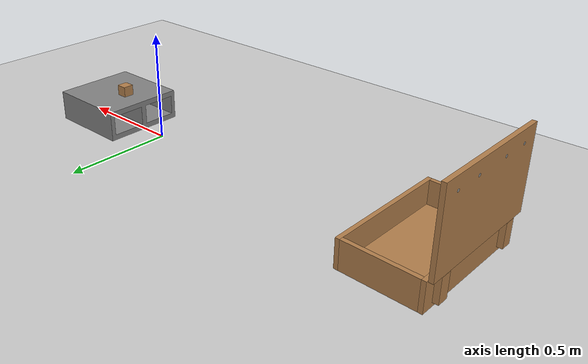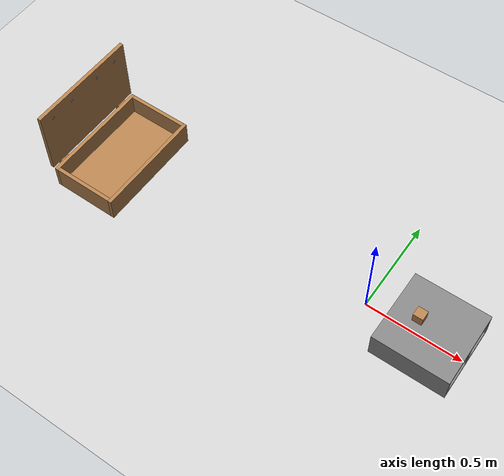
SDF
<sdf version="1.6">
 <world name="default">
  <light name="sun" type="directional">
   <pose>0 0 10 0 -0 0</pose>
   <diffuse>0.8 0.8 0.8 1</diffuse>
   <specular>0.2 0.2 0.2 1</specular>
   <attenuation>
    <range>1000</range>
    <constant>0.9</constant>
    <linear>0.01</linear>
    <quadratic>0.001</quadratic>
   </attenuation>
   <direction>-0.5 0.1 -0.9</direction>
  </light>
  <model name="ground_plane">
   <static>1</static>
   <link name="link">
    <collision name="collision">
     <geometry><plane><normal>0 0 1</normal><size>100 100</size></plane></geometry>
     <surface>
      <contact><collide_bitmask>65535</collide_bitmask></contact>
      <friction><ode><mu>100</mu><mu2>50</mu2></ode></friction>
     </surface>
    </collision>
    <visual name="visual">
     <cast_shadows>0</cast_shadows>
     <geometry><plane><normal>0 0 1</normal><size>100 100</size></plane></geometry>
     <material>
      <script><uri>file://media/materials/scripts/gazebo.material</uri><name>Gazebo/Grey</name></script>
     </material>
    </visual>
   </link>
  </model>
  <gravity>0 0 -9.8</gravity>
  <magnetic_field>6e-06 2.3e-05 -4.2e-05</magnetic_field>
  <atmosphere type="adiabatic"/>
  <physics name="default_physics" default="0" type="ode">
   <max_step_size>0.001</max_step_size>
   <real_time_factor>1</real_time_factor>
   <real_time_update_rate>1000</real_time_update_rate>
  </physics>
  <scene><ambient>0.4 0.4 0.4 1</ambient><background>0.7 0.7 0.7 1</background><shadows>1</shadows></scene>
  <audio><device>default</device></audio>
  <spherical_coordinates>
   <surface_model>EARTH_WGS84</surface_model>
   <latitude_deg>0</latitude_deg>
   <longitude_deg>0</longitude_deg>
   <elevation>0</elevation>
   <heading_deg>0</heading_deg>
  </spherical_coordinates>
  <model name="test_ground_6">
   <link name="link">
    <pose>-0.358127 -0.06074 0.168245 0 -0 0</pose>
    <inertial>
     <mass>0.000565</mass>
     <inertia><ixx>2.4e-07</ixx><ixy>0</ixy><ixz>0</ixz><iyy>2.4e-07</iyy><iyz>0</iyz><izz>2.4e-07</izz></inertia>
    </inertial>
    <visual name="visual">
     <geometry><box><size>0.05 0.05 0.05</size></box></geometry>
     <material>
      <script><uri>file://media/materials/scripts/gazebo.material</uri><name>Gazebo/Wood</name></script>
      <shader type="vertex"><normal_map>__default__</normal_map></shader>
      <ambient>1 1 1 1</ambient>
      <diffuse>1 1 1 1</diffuse>
      <specular>0.2 0.2 0.2 1</specular>
      <emissive>0 0 0 1</emissive>
     </material>
    </visual>
    <collision name="collision">
     <geometry><box><size>0.05 0.05 0.05</size></box></geometry>
     <surface>
      <friction>
       <ode><mu>1</mu><mu2>1</mu2><fdir1>0 0 0</fdir1><slip1>0</slip1><slip2>0</slip2></ode>
       <torsional>
        <coefficient>1</coefficient>
        <patch_radius>0</patch_radius>
        <surface_radius>0.05</surface_radius>
        <use_patch_radius>0</use_patch_radius>
        <ode><slip>0</slip></ode>
       </torsional>
      </friction>
      <bounce><restitution_coefficient>0</restitution_coefficient><threshold>1e+06</threshold></bounce>
      <contact>
       <collide_without_contact>0</collide_without_contact>
       <collide_without_contact_bitmask>1</collide_without_contact_bitmask>
       <collide_bitmask>1</collide_bitmask>
       <ode>
        <soft_cfm>0</soft_cfm>
        <soft_erp>0.2</soft_erp>
        <kp>100000</kp>
        <kd>1</kd>
        <max_vel>1</max_vel>
        <min_depth>0.001</min_depth>
       </ode>
       <bullet>
        <split_impulse>1</split_impulse>
        <split_impulse_penetration_threshold>-0.01</split_impulse_penetration_threshold>
        <soft_cfm>0</soft_cfm>
        <soft_erp>0.2</soft_erp>
        <kp>100000</kp>
        <kd>1</kd>
       </bullet>
      </contact>
     </surface>
    </collision>
   </link>
   <model name="cinder_block_wide">
    <link name="link">
     <inertial>
      <pose>0 0 0.071438 0 -0 0</pose>
      <mass>5</mass>
      <inertia>
       <ixx>0.0681466</ixx>
       <ixy>0</ixy>
       <iyy>0.0681466</iyy>
       <ixz>0</ixz>
       <iyz>0</iyz>
       <izz>0.124808</izz>
      </inertia>
     </inertial>
     <visual name="visual">
      <geometry><mesh><uri>model://cinder_block_wide/meshes/cinder_block_wide.dae</uri></mesh></geometry>
     </visual>
     <collision name="top">
      <pose>0 0 0.130175 0 -0 0</pose>
      <geometry><box><size>0.387354 0.387354 0.0254</size></box></geometry>
      <surface>
       <contact><ode><max_vel>0.1</max_vel><min_depth>0.001</min_depth></ode></contact>
       <friction><ode><mu>1</mu><mu2>1</mu2></ode></friction>
      </surface>
     </collision>
     <collision name="bottom">
      <pose>0 0 0.0127 0 -0 0</pose>
      <geometry><box><size>0.387354 0.387354 0.0254</size></box></geometry>
      <surface>
       <contact><ode><max_vel>0.1</max_vel><min_depth>0.001</min_depth></ode></contact>
       <friction><ode><mu>1</mu><mu2>1</mu2></ode></friction>
      </surface>
     </collision>
     <collision name="left">
      <pose>0 -0.183355 0.071438 0 -0 0</pose>
      <geometry><box><size>0.387354 0.020643 0.092075</size></box></geometry>
      <surface>
       <contact><ode><max_vel>0.1</max_vel><min_depth>0.001</min_depth></ode></contact>
       <friction><ode><mu>1</mu><mu2>1</mu2></ode></friction>
      </surface>
     </collision>
     <collision name="right">
      <pose>0 0.183355 0.071438 0 -0 0</pose>
      <geometry><box><size>0.387354 0.020643 0.092075</size></box></geometry>
      <surface>
       <contact><ode><max_vel>0.1</max_vel><min_depth>0.001</min_depth></ode></contact>
       <friction><ode><mu>1</mu><mu2>1</mu2></ode></friction>
      </surface>
     </collision>
     <collision name="middle">
      <pose>0 0 0.071438 0 -0 0</pose>
      <geometry><box><size>0.387354 0.0254 0.092075</size></box></geometry>
      <surface>
       <contact><ode><max_vel>0.1</max_vel><min_depth>0.001</min_depth></ode></contact>
       <friction><ode><mu>1</mu><mu2>1</mu2></ode></friction>
      </surface>
     </collision>
    </link>
    <pose>-0.292641 -0.063857 0 0 -0 0</pose>
   </model>
   <model name="wooden_case">
    <link name="base">
     <pose>0 0 0.024 0 -0 0</pose>
     <inertial>
      <pose>-0.022184 0 0.171592 0 -0 0</pose>
      <mass>3.96264</mass>
      <inertia>
       <ixx>0.213536</ixx>
       <ixy>0</ixy>
       <ixz>0.000779377</ixz>
       <iyy>0.0708943</iyy>
       <iyz>0</iyz>
       <izz>0.154604</izz>
      </inertia>
     </inertial>
     <collision name="collision_back">
      <pose>-0.053975 0 0.1778 0 -0 0</pose>
      <geometry><box><size>0.01905 0.5461 0.3175</size></box></geometry>
      <surface>
       <contact>
        <poissons_ratio>0.347</poissons_ratio>
        <elastic_modulus>8.8e+09</elastic_modulus>
        <ode><kp>100000</kp><kd>100</kd><max_vel>100</max_vel><min_depth>0.001</min_depth></ode>
       </contact>
       <friction>
        <torsional>
         <coefficient>1</coefficient>
         <use_patch_radius>0</use_patch_radius>
         <surface_radius>0.01</surface_radius>
        </torsional>
       </friction>
      </surface>
     </collision>
     <visual name="visual_back">
      <pose>-0.053975 0 0.1778 0 -0 0</pose>
      <geometry><box><size>0.01905 0.5461 0.3175</size></box></geometry>
      <material>
       <script><uri>file://media/materials/scripts/gazebo.material</uri><name>Gazebo/Wood</name></script>
      </material>
     </visual>
     <collision name="collision_bottom">
      <pose>0 0 0.009525 0 -0 0</pose>
      <geometry><box><size>0.127 0.5842 0.01905</size></box></geometry>
      <surface>
       <contact>
        <poissons_ratio>0.347</poissons_ratio>
        <elastic_modulus>8.8e+09</elastic_modulus>
        <ode><kp>100000</kp><kd>100</kd><max_vel>100</max_vel><min_depth>0.001</min_depth></ode>
       </contact>
       <friction>
        <torsional>
         <coefficient>1</coefficient>
         <use_patch_radius>0</use_patch_radius>
         <surface_radius>0.01</surface_radius>
        </torsional>
       </friction>
      </surface>
     </collision>
     <visual name="visual_bottom">
      <pose>0 0 0.009525 0 -0 0</pose>
      <geometry><box><size>0.127 0.5842 0.01905</size></box></geometry>
      <material>
       <script><uri>file://media/materials/scripts/gazebo.material</uri><name>Gazebo/Wood</name></script>
      </material>
     </visual>
     <collision name="collision_top">
      <pose>0 0 0.346075 0 -0 0</pose>
      <geometry><box><size>0.127 0.5842 0.01905</size></box></geometry>
      <surface>
       <contact>
        <poissons_ratio>0.347</poissons_ratio>
        <elastic_modulus>8.8e+09</elastic_modulus>
        <ode><kp>100000</kp><kd>100</kd><max_vel>100</max_vel><min_depth>0.001</min_depth></ode>
       </contact>
       <friction>
        <torsional>
         <coefficient>1</coefficient>
         <use_patch_radius>0</use_patch_radius>
         <surface_radius>0.01</surface_radius>
        </torsional>
       </friction>
      </surface>
     </collision>
     <visual name="visual_top">
      <pose>0 0 0.346075 0 -0 0</pose>
      <geometry><box><size>0.127 0.5842 0.01905</size></box></geometry>
      <material>
       <script><uri>file://media/materials/scripts/gazebo.material</uri><name>Gazebo/Wood</name></script>
      </material>
     </visual>
     <collision name="collision_left">
      <pose>0 -0.282575 0.1778 0 -0 0</pose>
      <geometry><box><size>0.127 0.01905 0.3175</size></box></geometry>
      <surface>
       <contact>
        <poissons_ratio>0.347</poissons_ratio>
        <elastic_modulus>8.8e+09</elastic_modulus>
        <ode><kp>100000</kp><kd>100</kd><max_vel>100</max_vel><min_depth>0.001</min_depth></ode>
       </contact>
       <friction>
        <torsional>
         <coefficient>1</coefficient>
         <use_patch_radius>0</use_patch_radius>
         <surface_radius>0.01</surface_radius>
        </torsional>
       </friction>
      </surface>
     </collision>
     <visual name="visual_left">
      <pose>0 -0.282575 0.1778 0 -0 0</pose>
      <geometry><box><size>0.127 0.01905 0.3175</size></box></geometry>
      <material>
       <script><uri>file://media/materials/scripts/gazebo.material</uri><name>Gazebo/Wood</name></script>
      </material>
     </visual>
     <collision name="collision_right">
      <pose>0 0.282575 0.1778 0 -0 0</pose>
      <geometry><box><size>0.127 0.01905 0.3175</size></box></geometry>
      <surface>
       <contact>
        <poissons_ratio>0.347</poissons_ratio>
        <elastic_modulus>8.8e+09</elastic_modulus>
        <ode><kp>100000</kp><kd>100</kd><max_vel>100</max_vel><min_depth>0.001</min_depth></ode>
       </contact>
       <friction>
        <torsional>
         <coefficient>1</coefficient>
         <use_patch_radius>0</use_patch_radius>
         <surface_radius>0.01</surface_radius>
        </torsional>
       </friction>
      </surface>
     </collision>
     <visual name="visual_right">
      <pose>0 0.282575 0.1778 0 -0 0</pose>
      <geometry><box><size>0.127 0.01905 0.3175</size></box></geometry>
      <material>
       <script><uri>file://media/materials/scripts/gazebo.material</uri><name>Gazebo/Wood</name></script>
      </material>
     </visual>
     <collision name="collision_block_left">
      <pose>0.0095 -0.2151 -0.012 0 -0 0</pose>
      <geometry><box><size>0.108 0.05 0.024</size></box></geometry>
      <surface>
       <contact>
        <poissons_ratio>0.347</poissons_ratio>
        <elastic_modulus>8.8e+09</elastic_modulus>
        <ode><kp>100000</kp><kd>100</kd><max_vel>100</max_vel><min_depth>0.001</min_depth></ode>
       </contact>
       <friction>
        <torsional>
         <coefficient>1</coefficient>
         <use_patch_radius>0</use_patch_radius>
         <surface_radius>0.01</surface_radius>
        </torsional>
       </friction>
      </surface>
     </collision>
     <visual name="visual_block_left">
      <pose>0.0095 -0.2151 -0.012 0 -0 0</pose>
      <geometry><box><size>0.108 0.05 0.024</size></box></geometry>
      <material>
       <script><uri>file://media/materials/scripts/gazebo.material</uri><name>Gazebo/Wood</name></script>
      </material>
     </visual>
     <collision name="collision_block_right">
      <pose>0.0095 0.2151 -0.012 0 -0 0</pose>
      <geometry><box><size>0.108 0.05 0.024</size></box></geometry>
      <surface>
       <contact>
        <poissons_ratio>0.347</poissons_ratio>
        <elastic_modulus>8.8e+09</elastic_modulus>
        <ode><kp>100000</kp><kd>100</kd><max_vel>100</max_vel><min_depth>0.001</min_depth></ode>
       </contact>
       <friction>
        <torsional>
         <coefficient>1</coefficient>
         <use_patch_radius>0</use_patch_radius>
         <surface_radius>0.01</surface_radius>
        </torsional>
       </friction>
      </surface>
     </collision>
     <visual name="visual_block_right">
      <pose>0.0095 0.2151 -0.012 0 -0 0</pose>
      <geometry><box><size>0.108 0.05 0.024</size></box></geometry>
      <material>
       <script><uri>file://media/materials/scripts/gazebo.material</uri><name>Gazebo/Wood</name></script>
      </material>
     </visual>
    </link>
    <link name="lid">
     <pose>0.243775 0 0.009525 0 -0 0</pose>
     <inertial>
      <mass>1.97874</mass>
      <inertia>
       <ixx>0.0563367</ixx>
       <ixy>0</ixy>
       <ixz>0</ixz>
       <iyy>0.020911</iyy>
       <iyz>0</iyz>
       <izz>0.0771281</izz>
      </inertia>
     </inertial>
     <collision name="collision">
      <geometry><box><size>0.3556 0.5842 0.01905</size></box></geometry>
      <surface>
       <contact>
        <poissons_ratio>0.347</poissons_ratio>
        <elastic_modulus>8.8e+09</elastic_modulus>
        <ode><kp>100000</kp><kd>100</kd><max_vel>100</max_vel><min_depth>0.001</min_depth></ode>
       </contact>
       <friction>
        <torsional>
         <coefficient>1</coefficient>
         <use_patch_radius>0</use_patch_radius>
         <surface_radius>0.01</surface_radius>
        </torsional>
       </friction>
      </surface>
     </collision>
     <visual name="visual">
      <geometry><box><size>0.3556 0.5842 0.01905</size></box></geometry>
      <material>
       <script><uri>file://media/materials/scripts/gazebo.material</uri><name>Gazebo/Wood</name></script>
      </material>
     </visual>
     <visual name="tee_nut_1">
      <pose>0.122 -0.216 0 0 -0 0</pose>
      <geometry><cylinder><radius>0.00635</radius><length>0.0192405</length></cylinder></geometry>
      <material>
       <script><uri>file://media/materials/scripts/gazebo.material</uri><name>Gazebo/Grey</name></script>
      </material>
     </visual>
     <visual name="tee_nut_2">
      <pose>0.122 -0.088 0 0 -0 0</pose>
      <geometry><cylinder><radius>0.00635</radius><length>0.0192405</length></cylinder></geometry>
      <material>
       <script><uri>file://media/materials/scripts/gazebo.material</uri><name>Gazebo/Grey</name></script>
      </material>
     </visual>
     <visual name="tee_nut_3">
      <pose>0.122 0.088 0 0 -0 0</pose>
      <geometry><cylinder><radius>0.00635</radius><length>0.0192405</length></cylinder></geometry>
      <material>
       <script><uri>file://media/materials/scripts/gazebo.material</uri><name>Gazebo/Grey</name></script>
      </material>
     </visual>
     <visual name="tee_nut_4">
      <pose>0.122 0.216 0 0 -0 0</pose>
      <geometry><cylinder><radius>0.00635</radius><length>0.0192405</length></cylinder></geometry>
      <material>
       <script><uri>file://media/materials/scripts/gazebo.material</uri><name>Gazebo/Grey</name></script>
      </material>
     </visual>
    </link>
    <joint name="lid_hinge" type="revolute">
     <pose>-0.1778 0 0.01905 0 -0 0</pose>
     <parent>base</parent>
     <child>lid</child>
     <axis>
      <xyz>0 1 0</xyz>
      <limit><upper>0.523599</upper><lower>-1.5708</lower></limit>
      <use_parent_model_frame>0</use_parent_model_frame>
      <dynamics><spring_reference>0</spring_reference><spring_stiffness>0</spring_stiffness></dynamics>
     </axis>
    </joint>
    <pose>-2.24246 -0.06156 0.068884 0.254065 -1.56837 2.87718</pose>
   </model>
   <static>0</static>
   <pose>0.616531 0.061445 0 0 -0 0</pose>
  </model>
 </world>
</sdf>
